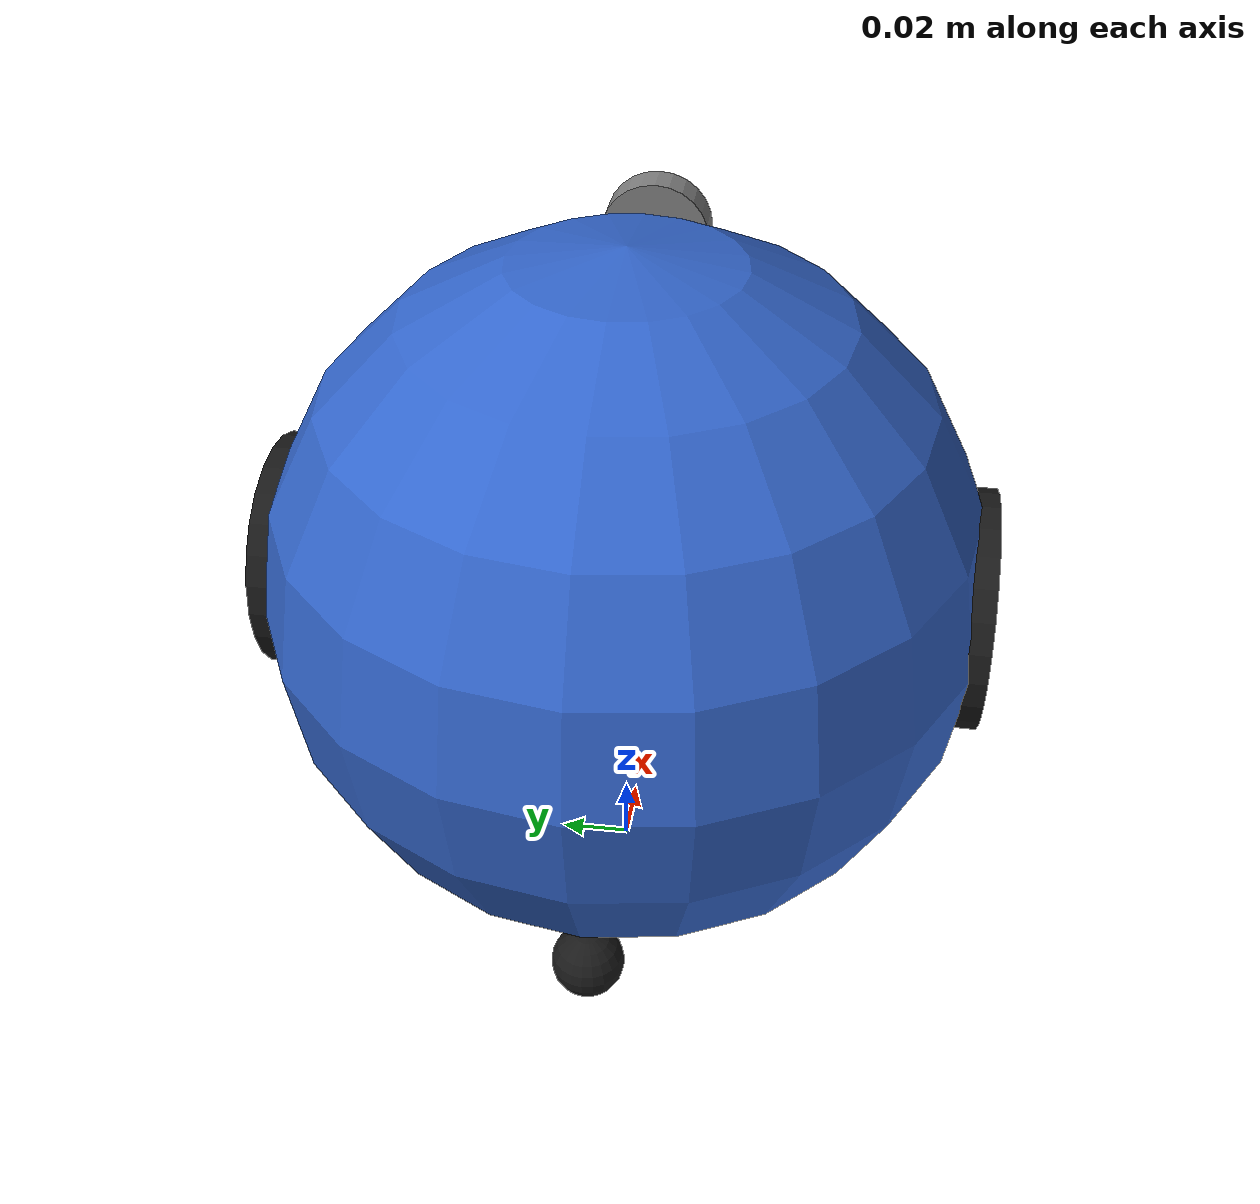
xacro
<?xml version="1.0"?>
<robot xmlns:xacro="http://www.ros.org/wiki/xacro" name="ball_e">

  <!-- Parameters -->
  <xacro:arg name="use_sim" default="true"/>

  <!-- Include camera sensor -->
  <xacro:include filename="$(find ball_e_description)/urdf/camera.xacro"/>

  <!-- Base footprint (reference frame on the ground) -->
  <link name="base_footprint"/>

  <!-- Base link (main body) - Ball shaped -->
  <link name="base_link">
    <visual>
      <origin xyz="0 0 0.1" rpy="0 0 0"/>
      <geometry>
        <sphere radius="0.1"/>
      </geometry>
      <material name="blue">
        <color rgba="0.2 0.4 0.8 1.0"/>
      </material>
    </visual>

    <collision>
      <origin xyz="0 0 0.1" rpy="0 0 0"/>
      <geometry>
        <sphere radius="0.1"/>
      </geometry>
    </collision>

    <inertial>
      <origin xyz="0 0 0.1" rpy="0 0 0"/>
      <mass value="2.0"/>
      <!-- Inertia for solid sphere: I = 2/5 * m * r^2 = 2/5 * 2.0 * 0.1^2 = 0.004 -->
      <inertia ixx="0.004" ixy="0.0" ixz="0.0"
               iyy="0.004" iyz="0.0"
               izz="0.004"/>
    </inertial>
  </link>

  <joint name="base_joint" type="fixed">
    <parent link="base_footprint"/>
    <child link="base_link"/>
    <origin xyz="0 0 0" rpy="0 0 0"/>
  </joint>

  <!-- Instantiate camera sensor - integrated in top hemisphere -->
  <xacro:camera_sensor
    parent="base_link"
    name="camera"
    xyz="0.05 0 0.18"
    rpy="0 0 0"/>

  <!-- Wheels (visual only for now, will add control later) -->
  <link name="left_wheel">
    <visual>
      <origin xyz="0 0 0" rpy="1.5708 0 0"/>
      <geometry>
        <cylinder radius="0.033" length="0.018"/>
      </geometry>
      <material name="black">
        <color rgba="0.1 0.1 0.1 1.0"/>
      </material>
    </visual>

    <collision>
      <origin xyz="0 0 0" rpy="1.5708 0 0"/>
      <geometry>
        <cylinder radius="0.033" length="0.018"/>
      </geometry>
    </collision>

    <inertial>
      <origin xyz="0 0 0" rpy="1.5708 0 0"/>
      <mass value="0.1"/>
      <inertia ixx="0.00003" ixy="0.0" ixz="0.0"
               iyy="0.00003" iyz="0.0"
               izz="0.00005"/>
    </inertial>
  </link>

  <joint name="left_wheel_joint" type="continuous">
    <parent link="base_link"/>
    <child link="left_wheel"/>
    <origin xyz="0 0.09 0.1" rpy="0 0 0"/>
    <axis xyz="0 1 0"/>
  </joint>

  <link name="right_wheel">
    <visual>
      <origin xyz="0 0 0" rpy="1.5708 0 0"/>
      <geometry>
        <cylinder radius="0.033" length="0.018"/>
      </geometry>
      <material name="black">
        <color rgba="0.1 0.1 0.1 1.0"/>
      </material>
    </visual>

    <collision>
      <origin xyz="0 0 0" rpy="1.5708 0 0"/>
      <geometry>
        <cylinder radius="0.033" length="0.018"/>
      </geometry>
    </collision>

    <inertial>
      <origin xyz="0 0 0" rpy="1.5708 0 0"/>
      <mass value="0.1"/>
      <inertia ixx="0.00003" ixy="0.0" ixz="0.0"
               iyy="0.00003" iyz="0.0"
               izz="0.00005"/>
    </inertial>
  </link>

  <joint name="right_wheel_joint" type="continuous">
    <parent link="base_link"/>
    <child link="right_wheel"/>
    <origin xyz="0 -0.09 0.1" rpy="0 0 0"/>
    <axis xyz="0 1 0"/>
  </joint>

  <!-- Caster wheel (for stability) -->
  <link name="caster_wheel">
    <visual>
      <origin xyz="0 0 0" rpy="0 0 0"/>
      <geometry>
        <sphere radius="0.01"/>
      </geometry>
      <material name="black">
        <color rgba="0.1 0.1 0.1 1.0"/>
      </material>
    </visual>

    <collision>
      <origin xyz="0 0 0" rpy="0 0 0"/>
      <geometry>
        <sphere radius="0.01"/>
      </geometry>
    </collision>

    <inertial>
      <origin xyz="0 0 0" rpy="0 0 0"/>
      <mass value="0.01"/>
      <inertia ixx="0.000001" ixy="0.0" ixz="0.0"
               iyy="0.000001" iyz="0.0"
               izz="0.000001"/>
    </inertial>
  </link>

  <joint name="caster_wheel_joint" type="fixed">
    <parent link="base_link"/>
    <child link="caster_wheel"/>
    <origin xyz="-0.07 0 0.02" rpy="0 0 0"/>
  </joint>

  <!-- Gazebo Classic Differential Drive Plugin -->
  <gazebo>
    <plugin name="differential_drive_controller" filename="libgazebo_ros_diff_drive.so">
      <ros>
        <namespace></namespace>
        <remapping>cmd_vel:=cmd_vel</remapping>
        <remapping>odom:=odom</remapping>
      </ros>

      <!-- Wheel joints -->
      <left_joint>left_wheel_joint</left_joint>
      <right_joint>right_wheel_joint</right_joint>

      <!-- Kinematics -->
      <wheel_separation>0.18</wheel_separation>
      <wheel_diameter>0.066</wheel_diameter>

      <!-- Limits -->
      <max_wheel_torque>20</max_wheel_torque>
      <max_wheel_acceleration>1.0</max_wheel_acceleration>

      <!-- Output -->
      <publish_odom>true</publish_odom>
      <publish_odom_tf>true</publish_odom_tf>
      <publish_wheel_tf>false</publish_wheel_tf>

      <odometry_frame>odom</odometry_frame>
      <robot_base_frame>base_footprint</robot_base_frame>
    </plugin>
  </gazebo>

</robot>

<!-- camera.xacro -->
<robot xmlns:xacro="http://www.ros.org/wiki/xacro">

  <xacro:macro name="camera_sensor" params="parent name xyz rpy">

    <!-- Camera link - small cylindrical protrusion -->
    <link name="${name}_link">
      <visual>
        <origin xyz="0.005 0 0" rpy="0 1.5708 0"/>
        <geometry>
          <cylinder radius="0.015" length="0.01"/>
        </geometry>
        <material name="camera_grey">
          <color rgba="0.5 0.5 0.5 1.0"/>
        </material>
      </visual>

      <collision>
        <origin xyz="0.005 0 0" rpy="0 1.5708 0"/>
        <geometry>
          <cylinder radius="0.015" length="0.01"/>
        </geometry>
      </collision>

      <inertial>
        <origin xyz="0 0 0" rpy="0 0 0"/>
        <mass value="0.01"/>
        <inertia ixx="0.000001" ixy="0.0" ixz="0.0"
                 iyy="0.000001" iyz="0.0"
                 izz="0.000001"/>
      </inertial>
    </link>

    <joint name="${name}_joint" type="fixed">
      <parent link="${parent}"/>
      <child link="${name}_link"/>
      <origin xyz="${xyz}" rpy="${rpy}"/>
    </joint>

    <!-- Camera optical frame (standard ROS convention: X forward, Y left, Z up) -->
    <link name="${name}_optical_frame"/>

    <joint name="${name}_optical_joint" type="fixed">
      <parent link="${name}_link"/>
      <child link="${name}_optical_frame"/>
      <!-- Rotate from camera link frame (Z forward) to optical frame (X forward, Y left, Z up) -->
      <origin xyz="0 0 0" rpy="${-pi/2} 0 ${-pi/2}"/>
    </joint>

    <!-- Gazebo Classic camera plugin -->
    <gazebo reference="${name}_link">
      <sensor type="camera" name="${name}">
        <update_rate>30.0</update_rate>
        <camera name="${name}">
          <horizontal_fov>1.3962634</horizontal_fov>
          <image>
            <width>640</width>
            <height>480</height>
            <format>R8G8B8</format>
          </image>
          <clip>
            <near>0.02</near>
            <far>300</far>
          </clip>
          <noise>
            <type>gaussian</type>
            <mean>0.0</mean>
            <stddev>0.007</stddev>
          </noise>
        </camera>
        <plugin name="${name}_controller" filename="libgazebo_ros_camera.so">
          <ros>
            <namespace></namespace>
            <remapping>~/image_raw:=${name}/image_raw</remapping>
            <remapping>~/camera_info:=${name}/camera_info</remapping>
          </ros>
          <camera_name>${name}</camera_name>
          <frame_name>${name}_optical_frame</frame_name>
          <hack_baseline>0.07</hack_baseline>
        </plugin>
      </sensor>
    </gazebo>

  </xacro:macro>

</robot>
